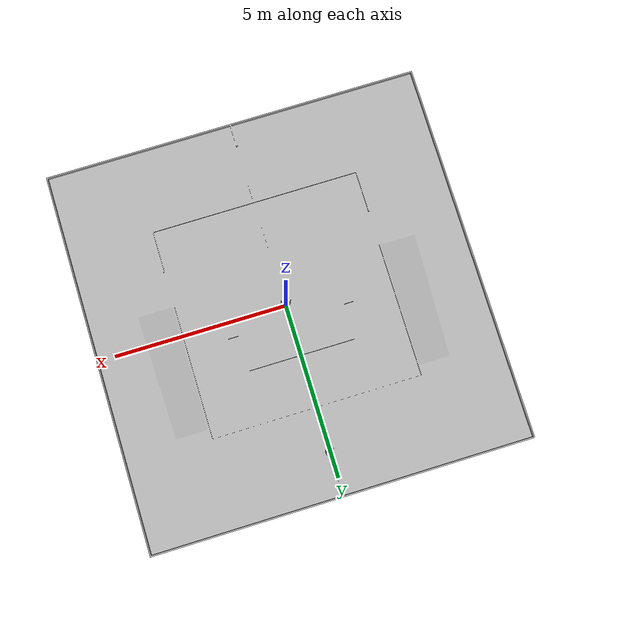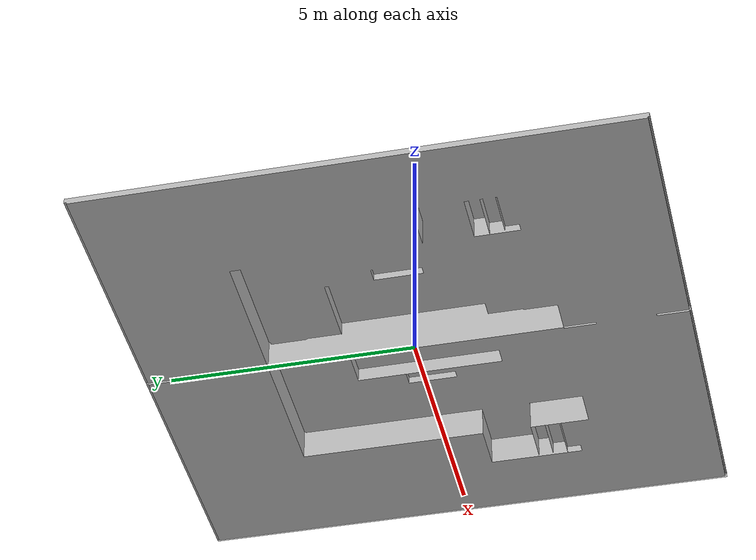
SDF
<?xml version="1.0"?>
<sdf version="1.10">
  <model name="robocon2027_field">
    <static>true</static>

    <link name="field">

      <visual name="field_visual">
        <geometry>
          <mesh>
            <uri>model://robocon2027_field/meshes/Robocon2027.glb</uri>
            <scale>1 1 1</scale>
          </mesh>
        </geometry>
      </visual>

      <collision name="field_collision">
        <pose>0 0 -0.05 0 0 0</pose>
        <geometry>
          <box>
            <size>11.05 11.05 0.10</size>
          </box>
        </geometry>
      </collision>

    </link>
  </model>
</sdf>
